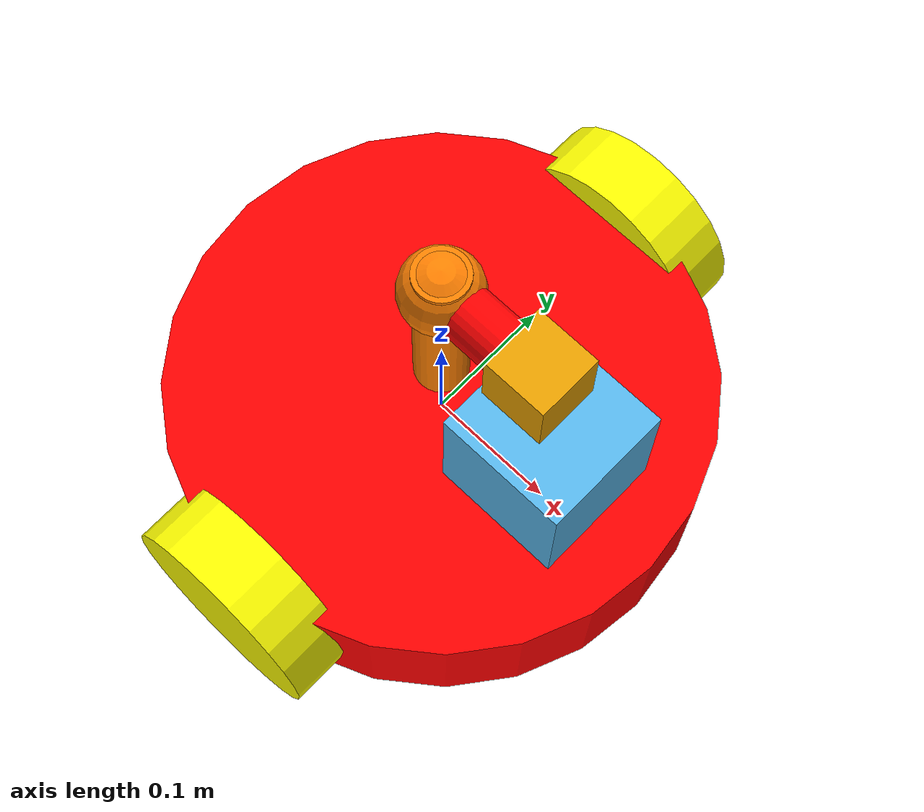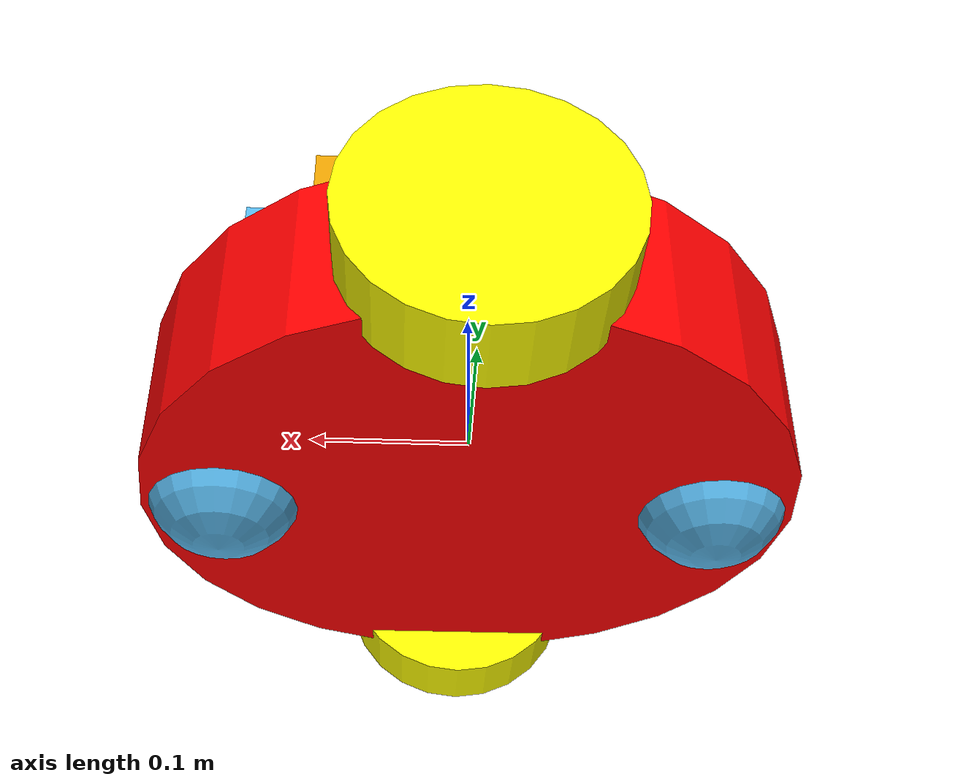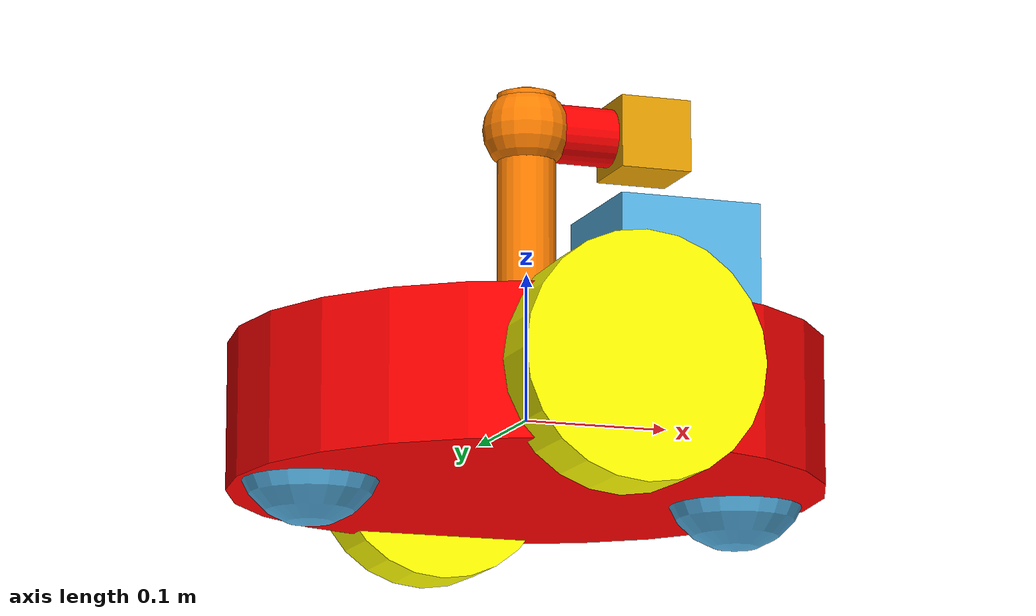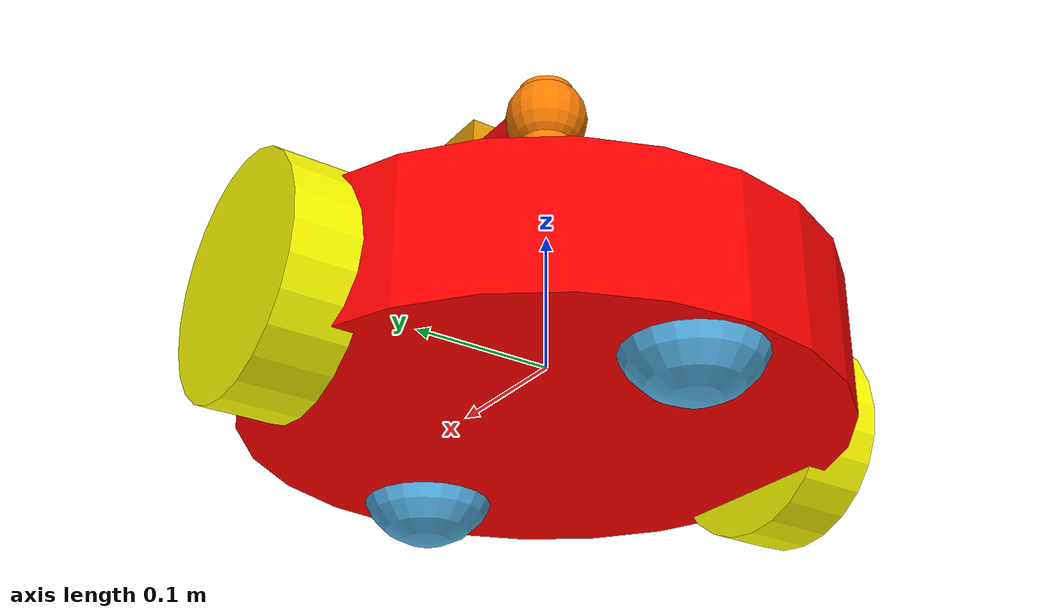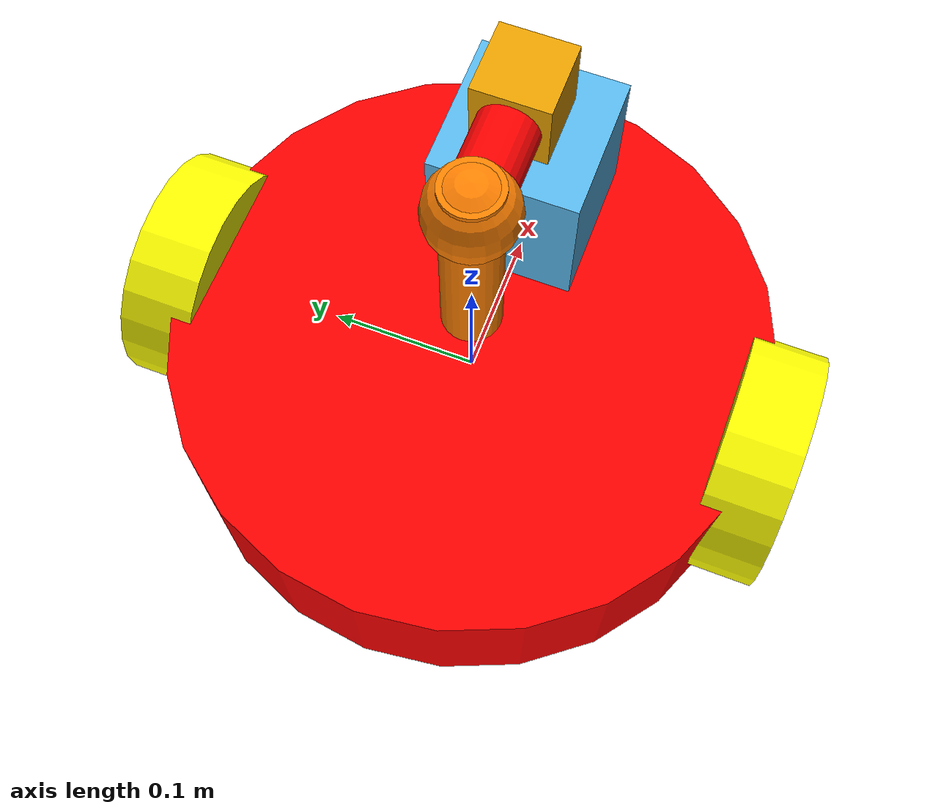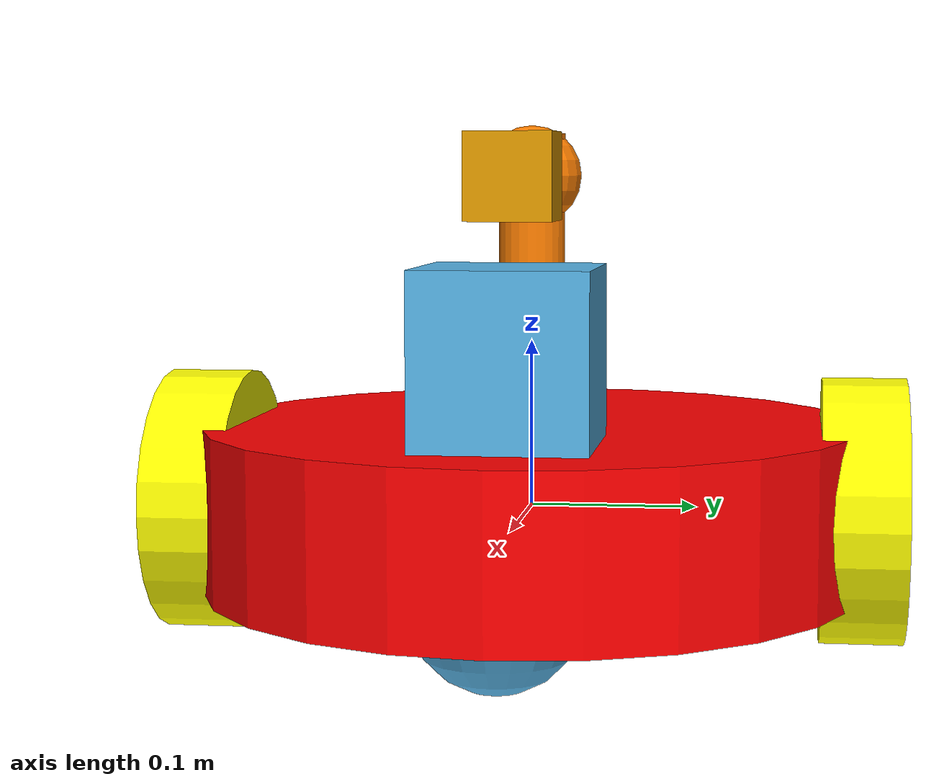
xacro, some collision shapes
<?xml version='1.0'?>

<robot name="slam_bot" xmlns:xacro="http://www.ros.org/wiki/xacro">
  <xacro:include filename="$(find slam_project)/urdf/slam_bot.gazebo" />
  <link name="robot_footprint"></link>

  <joint name="robot_footprint_joint" type="fixed">
    <origin xyz="0 0 0" rpy="0 0 0" />
    <parent link="robot_footprint"/>
    <child link="chassis" />
  </joint>

  <material name="Yellow">
	<color rgba="1.0 1.0 0 1.0"/>
  </material>

  <material name="Red">
	<color rgba="1.0 0 0 1.0"/>
  </material>

  <material name="Green">
	<color rgba="0.0 1.0 0 1.0"/>
  </material>

  <material name="Orange">
	<color rgba="1.0 0.5 0 1.0"/>
  </material>

  <link name='chassis'>
    <pose>0 0 0.1 0 0 0</pose>

    <inertial>
      <mass value="12.0"/>
      <origin xyz="0.0 0 0" rpy=" 0 0 0"/>
      <inertia
          ixx="0.1" ixy="0" ixz="0"
          iyy="0.1" iyz="0"
          izz="0.1"
      />
    </inertial>

    <collision name='collision'>
      <origin xyz="0 0 0" rpy=" 0 0 0"/>
      <geometry>
        <cylinder radius="0.2" length="0.1"/>
      </geometry>
    </collision>

    <visual name='chassis_visual'>
      <origin xyz="0 0 0" rpy=" 0 0 0"/>
      <geometry>
        <cylinder radius="0.2" length="0.1"/>
      </geometry>
      <material name="Red"/>
    </visual>

	<collision name='front_caster_collision'>
      <origin xyz="0.15 0 -0.03" rpy=" 0 0 0"/>
      <geometry>
        <sphere radius="0.05"/>
      </geometry>
      <surface>
        <friction>
          <ode>
            <mu>0</mu>
            <mu2>0</mu2>
            <slip1>1.0</slip1>
            <slip2>1.0</slip2>
          </ode>
        </friction>
      </surface>
    </collision>

    <visual name='front_caster_visual'>
      <origin xyz="0.15 0 -0.03" rpy=" 0 0 0"/>
      <geometry>
        <sphere radius="0.05"/>
      </geometry>
    </visual>

    <collision name='back_caster_collision'>
      <origin xyz="-0.15 0 -0.03" rpy=" 0 0 0"/>
      <geometry>
        <sphere radius="0.05"/>
      </geometry>
      <surface>
        <friction>
          <ode>
            <mu>0</mu>
            <mu2>0</mu2>
            <slip1>1.0</slip1>
            <slip2>1.0</slip2>
          </ode>
        </friction>
      </surface>
    </collision>

    <visual name='back_caster_visual'>
      <origin xyz="-0.15 0 -0.03" rpy=" 0 0 0"/>
      <geometry>
        <sphere radius="0.05"/>
      </geometry>
    </visual>

  </link>

  <link name='left_wheel'>
    <inertial>
      <mass value="3.0"/>
      <origin xyz="0 0 0" rpy="  0 1.5707 1.5707"/>
      <inertia
          ixx="0.1" ixy="0" ixz="0"
          iyy="0.1" iyz="0"
          izz="0.1"
      />
    </inertial>

    <collision name='left_wheel_collision'>
      <origin xyz="0 0 0" rpy="  0 1.5707 1.5707"/>
      <geometry>
        <cylinder radius="0.08" length="0.05"/>
      </geometry>
    </collision>

    <visual name='left_wheel_visual'>
      <origin xyz="0 0 0" rpy="  0 1.5707 1.5707"/>
      <geometry>
        <cylinder radius="0.08" length="0.05"/>
      </geometry>
	  <material name="Yellow"/>
    </visual>
  </link>

  <joint type="continuous" name="left_wheel_hinge">
    <origin xyz="0 0.2 0" rpy="0 0 0"/>
    <child link="left_wheel"/>
    <parent link="chassis"/>
    <axis xyz="0 1 0" rpy="0 0 0"/>
    <limit effort="10000" velocity="1000"/>
    <joint_properties damping="1.0" friction="1.0"/>
  </joint>

  <link name='right_wheel'>
    <inertial>
      <mass value="3.0"/>
      <origin xyz="0 0 0" rpy="  0 1.5707 1.5707"/>
      <inertia
          ixx="0.1" ixy="0" ixz="0"
          iyy="0.1" iyz="0"
          izz="0.1"
      />
    </inertial>

    <collision name='right_wheel_collision'>
      <origin xyz="0 0 0" rpy="  0 1.5707 1.5707"/>
      <geometry>
        <cylinder radius="0.08" length="0.05"/>
      </geometry>
    </collision>

    <visual name='right_wheel_visual'>
      <origin xyz="0 0 0" rpy="  0 1.5707 1.5707"/>
      <geometry>
        <cylinder radius="0.08" length="0.05"/>
      </geometry>
	  <material name="Yellow"/>
    </visual>
  </link>

  <joint type="continuous" name="right_wheel_hinge">
    <origin xyz="0 -0.2 0" rpy="0 0 0"/>
    <child link="right_wheel"/>
    <parent link="chassis"/>
    <axis xyz="0 1 0" rpy="0 0 0"/>
    <limit effort="10000" velocity="1000"/>
    <joint_properties damping="1.0" friction="1.0"/>
  </joint>

  <link name="arm1">
	  <collision>
		<origin xyz="0 0 0" rpy="0 0 0"/>
		<geometry>
		  <cylinder  radius="0.02" length="0.15"/>
		</geometry>
	  </collision>

	  <visual>
		<origin xyz="0 0 0" rpy="0 0 0"/>
		<geometry>
		  <cylinder  radius="0.02" length="0.15"/>
		</geometry>
		<material name="Orange"/>
	  </visual>

	  <inertial>
		<mass value="0.2" />
		<origin xyz="0 0 0" rpy="0 0 0"/>
		<inertia ixx="1e-4" ixy="0" ixz="0" iyy="1e-4" iyz="0" izz="1e-4" />
	  </inertial>
  </link>

  <joint type="fixed" name="arm1_joint">
    <origin xyz="0 0 0.15" rpy="0 0 0"/>
    <child link="arm1"/>
    <parent link="chassis"/>
    <axis xyz="0 0 1" rpy="0 0 0"/>
    <limit effort="10000" velocity="1000"/>
    <joint_properties damping="1.0" friction="1.0"/>
  </joint>

  <link name="elbow1">
	  <collision>
		<origin xyz="0 0 0" rpy="0 0 0"/>
		<geometry>
		  <sphere radius="0.03"/>
		</geometry>
	  </collision>

	  <visual>
		<origin xyz="0 0 0" rpy="0 0 0"/>
		<geometry>
		  <sphere radius="0.03"/>
		</geometry>
		<material name="Orange"/>
	  </visual>

	  <inertial>
		<mass value="0.05" />
		<origin xyz="0 0 0" rpy="0 0 0"/>
		<inertia ixx="1e-6" ixy="0" ixz="0" iyy="1e-6" iyz="0" izz="1e-6" />
	  </inertial>
  </link>

  <joint type="fixed" name="elbow1_hinge">
    <origin xyz="0 0 0.05" rpy="0 0 0"/>
    <child link="elbow1"/>
    <parent link="arm1"/>
    <axis xyz="0 1 0" rpy="0 0 0"/>
    <limit effort="10000" velocity="1000"/>
    <joint_properties damping="1.0" friction="1.0"/>
  </joint>

  <link name="arm2">
	  <collision>
		<origin xyz="0 0 0" rpy="1.5707 0 1.5707"/>
		<geometry>
		  <cylinder  radius="0.02" length="0.05"/>
		</geometry>
	  </collision>

	  <visual>
		<origin xyz="0 0 0" rpy="1.5707 0 1.5707"/>
		<geometry>
		  <cylinder  radius="0.02" length="0.05"/>
		</geometry>
		<material name="Red"/>
	  </visual>

	  <inertial>
		<mass value="0.1" />
		<origin xyz="0 0 0" rpy="0 0 0"/>
		<inertia ixx="1e-5" ixy="0" ixz="0" iyy="1e-5" iyz="0" izz="1e-5" />
	  </inertial>
  </link>

  <joint type="fixed" name="arm2_joint">
    <origin xyz="0.035 0 0" rpy="0 0 0"/>
    <child link="arm2"/>
    <parent link="elbow1"/>
    <axis xyz="0.15 0.15 0" rpy="0 0 0"/>
    <limit effort="10000" velocity="1000"/>
    <joint_properties damping="1.0" friction="1.0"/>
  </joint>

  <link name="camera_link">
  <collision>
    <origin xyz="0 0 0" rpy="0 0 0"/>
    <geometry>
      <box size="0.04 0.04 0.04"/>
    </geometry>
  </collision>
  <visual>
    <origin xyz="0 0 0" rpy="0 0 0"/>
    <geometry>
      <box size="0.04 0.04 0.04"/>
    </geometry>
    <material name="Green"/>
  </visual>
  <inertial>
    <mass value="0.1" />
    <origin xyz="0 0 0" rpy="0 0 0"/>
    <inertia ixx="1e-6" ixy="0" ixz="0" iyy="1e-6" iyz="0" izz="1e-6" />
  </inertial>
  </link>

  <joint type="fixed" name="camera_joint">
    <origin xyz="0.05 0 0" rpy="0 0 0"/>
    <child link="camera_link"/>
    <parent link="arm2"/>
    <axis xyz="0 0 0" rpy="0 0 0"/>
    <limit effort="10000" velocity="1000"/>
    <joint_properties damping="1.0" friction="1.0"/>
  </joint>

<link name="camera_rgbd_frame">
	<collision>
    <origin xyz="0 0 0" rpy="0 0 0"/>
    <geometry>
      <box size="0.05 0.05 0.05"/>
    </geometry>
  </collision>
  <visual>
    <origin xyz="0 0 0" rpy="0 0 0"/>
    <geometry>
      <box size="0.05 0.05 0.05"/>
    </geometry>
  </visual>
  <inertial>
    <mass value="0.1" />
    <origin xyz="0 0 0" rpy="0 0 0"/>
    <inertia ixx="1e-6" ixy="0" ixz="0" iyy="1e-6" iyz="0" izz="1e-6" />
  </inertial>
  </link>

  <joint type="fixed" name="camera_frame_joint">
    <origin xyz="0 0 0" rpy="-1.5708 0 -1.5708"/>
    <child link="camera_rgbd_frame"/>
    <parent link="camera_link"/>
    <axis xyz="0 0 0" rpy="0 0 0"/>
    <limit effort="10000" velocity="1000"/>
    <joint_properties damping="1.0" friction="1.0"/>
  </joint>

  <link name="hokuyo">
  <collision>
    <origin xyz="0 0 0" rpy="0 0 0"/>
    <geometry>
      <box size="0.1 0.1 0.1"/>
    </geometry>
  </collision>
  <visual>
    <origin xyz="0 0 0" rpy="0 0 0"/>
    <geometry>
      <mesh filename="package://slam_project/meshes/hokuyo.dae"/>
    </geometry>
  </visual>
  <inertial>
    <mass value="0.1" />
    <origin xyz="0 0 0" rpy="0 0 0"/>
    <inertia ixx="1e-6" ixy="0" ixz="0" iyy="1e-6" iyz="0" izz="1e-6" />
  </inertial>
  </link>

  <joint type="fixed" name="hokuyo_joint">
    <origin xyz="0.1 0 .1" rpy="0 0 0"/>
    <child link="hokuyo"/>
    <parent link="chassis"/>
    <axis xyz="0 0 0" rpy="0 0 0"/>
    <limit effort="10000" velocity="1000"/>
    <joint_properties damping="1.0" friction="1.0"/>
  </joint>

</robot>
